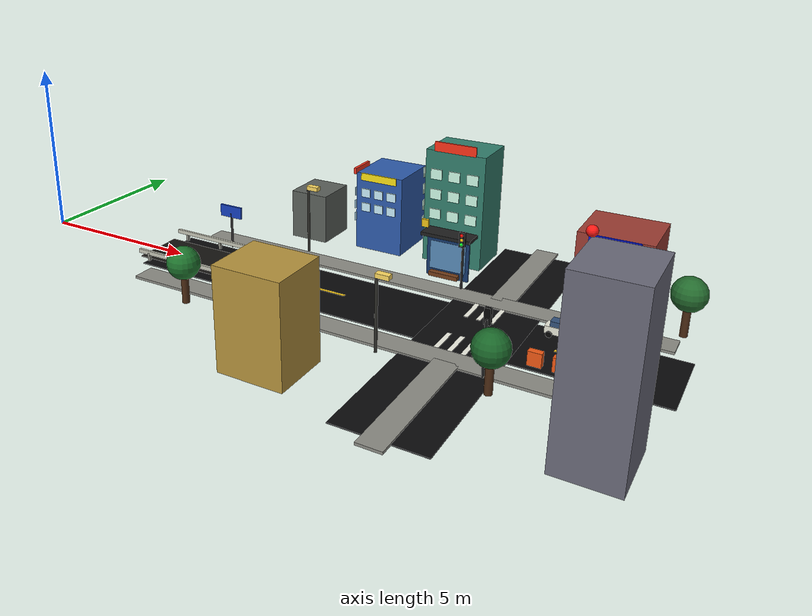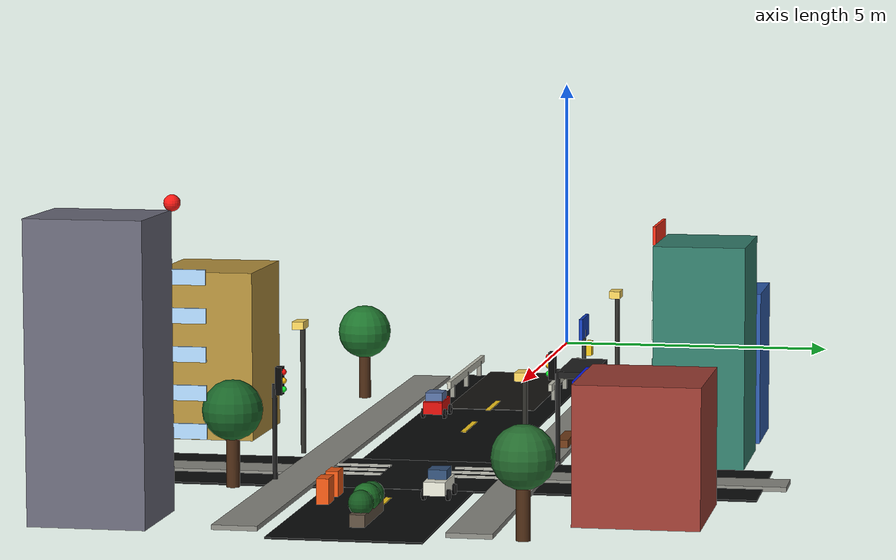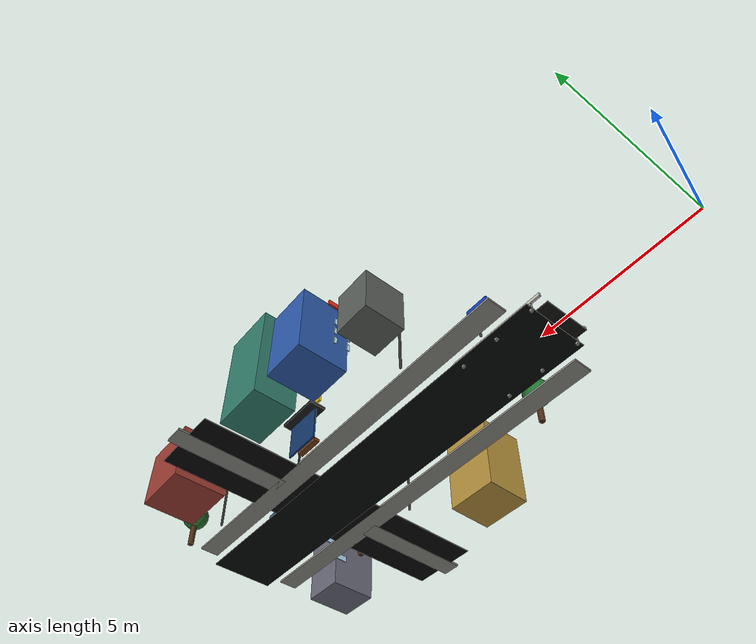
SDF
<?xml version="1.0" ?>
<sdf version="1.6">
  <model name="simple_city">
    <static>true</static>

    <!-- Main road linking the mountain exit to the city block. -->
    <link name="main_road">
      <pose>12.0 0 0.012 0 0 0</pose>
      <collision name="collision">
        <geometry><box><size>15.0 2.2 0.024</size></box></geometry>
      </collision>
      <visual name="visual">
        <geometry><box><size>15.0 2.2 0.024</size></box></geometry>
        <material><ambient>0.035 0.038 0.042 1</ambient><diffuse>0.035 0.038 0.042 1</diffuse></material>
      </visual>
    </link>

    <link name="cross_road">
      <pose>14.5 0 0.014 0 0 0</pose>
      <collision name="collision">
        <geometry><box><size>2.4 10.5 0.026</size></box></geometry>
      </collision>
      <visual name="visual">
        <geometry><box><size>2.4 10.5 0.026</size></box></geometry>
        <material><ambient>0.04 0.043 0.047 1</ambient><diffuse>0.04 0.043 0.047 1</diffuse></material>
      </visual>
    </link>

    <link name="connector_road">
      <pose>6.2 0 0.018 0 0 0</pose>
      <collision name="collision">
        <geometry><box><size>4.2 1.5 0.026</size></box></geometry>
      </collision>
      <visual name="visual">
        <geometry><box><size>4.2 1.5 0.026</size></box></geometry>
        <material><ambient>0.08 0.075 0.065 1</ambient><diffuse>0.08 0.075 0.065 1</diffuse></material>
      </visual>
    </link>

    <!-- Sidewalks. -->
    <link name="sidewalk_north">
      <pose>12.0 1.65 0.035 0 0 0</pose>
      <collision name="collision">
        <geometry><box><size>14.0 0.65 0.07</size></box></geometry>
      </collision>
      <visual name="visual">
        <geometry><box><size>14.0 0.65 0.07</size></box></geometry>
        <material><ambient>0.55 0.55 0.52 1</ambient><diffuse>0.55 0.55 0.52 1</diffuse></material>
      </visual>
    </link>

    <link name="sidewalk_south">
      <pose>12.0 -1.65 0.035 0 0 0</pose>
      <collision name="collision">
        <geometry><box><size>14.0 0.65 0.07</size></box></geometry>
      </collision>
      <visual name="visual">
        <geometry><box><size>14.0 0.65 0.07</size></box></geometry>
        <material><ambient>0.55 0.55 0.52 1</ambient><diffuse>0.55 0.55 0.52 1</diffuse></material>
      </visual>
    </link>

    <link name="sidewalk_west">
      <pose>14.5 -3.7 0.035 0 0 0</pose>
      <collision name="collision">
        <geometry><box><size>0.65 3.8 0.07</size></box></geometry>
      </collision>
      <visual name="visual">
        <geometry><box><size>0.65 3.8 0.07</size></box></geometry>
        <material><ambient>0.55 0.55 0.52 1</ambient><diffuse>0.55 0.55 0.52 1</diffuse></material>
      </visual>
    </link>

    <link name="sidewalk_east">
      <pose>14.5 3.7 0.035 0 0 0</pose>
      <collision name="collision">
        <geometry><box><size>0.65 3.8 0.07</size></box></geometry>
      </collision>
      <visual name="visual">
        <geometry><box><size>0.65 3.8 0.07</size></box></geometry>
        <material><ambient>0.55 0.55 0.52 1</ambient><diffuse>0.55 0.55 0.52 1</diffuse></material>
      </visual>
    </link>

    <!-- Lane markings. -->
    <link name="center_line_1">
      <pose>8.0 0 0.045 0 0 0</pose>
      <visual name="visual">
        <geometry><box><size>1.0 0.08 0.015</size></box></geometry>
        <material><ambient>1.0 0.82 0.12 1</ambient><diffuse>1.0 0.82 0.12 1</diffuse></material>
      </visual>
    </link>
    <link name="center_line_2">
      <pose>10.2 0 0.045 0 0 0</pose>
      <visual name="visual">
        <geometry><box><size>1.0 0.08 0.015</size></box></geometry>
        <material><ambient>1.0 0.82 0.12 1</ambient><diffuse>1.0 0.82 0.12 1</diffuse></material>
      </visual>
    </link>
    <link name="center_line_3">
      <pose>17.0 0 0.045 0 0 0</pose>
      <visual name="visual">
        <geometry><box><size>1.0 0.08 0.015</size></box></geometry>
        <material><ambient>1.0 0.82 0.12 1</ambient><diffuse>1.0 0.82 0.12 1</diffuse></material>
      </visual>
    </link>
    <link name="crosswalk_north_1">
      <pose>14.0 1.0 0.055 0 0 0</pose>
      <visual name="visual">
        <geometry><box><size>0.12 1.0 0.018</size></box></geometry>
        <material><ambient>0.95 0.95 0.90 1</ambient><diffuse>0.95 0.95 0.90 1</diffuse></material>
      </visual>
    </link>
    <link name="crosswalk_north_2">
      <pose>14.35 1.0 0.055 0 0 0</pose>
      <visual name="visual">
        <geometry><box><size>0.12 1.0 0.018</size></box></geometry>
        <material><ambient>0.95 0.95 0.90 1</ambient><diffuse>0.95 0.95 0.90 1</diffuse></material>
      </visual>
    </link>
    <link name="crosswalk_north_3">
      <pose>14.7 1.0 0.055 0 0 0</pose>
      <visual name="visual">
        <geometry><box><size>0.12 1.0 0.018</size></box></geometry>
        <material><ambient>0.95 0.95 0.90 1</ambient><diffuse>0.95 0.95 0.90 1</diffuse></material>
      </visual>
    </link>
    <link name="crosswalk_south_1">
      <pose>14.0 -1.0 0.055 0 0 0</pose>
      <visual name="visual">
        <geometry><box><size>0.12 1.0 0.018</size></box></geometry>
        <material><ambient>0.95 0.95 0.90 1</ambient><diffuse>0.95 0.95 0.90 1</diffuse></material>
      </visual>
    </link>
    <link name="crosswalk_south_2">
      <pose>14.35 -1.0 0.055 0 0 0</pose>
      <visual name="visual">
        <geometry><box><size>0.12 1.0 0.018</size></box></geometry>
        <material><ambient>0.95 0.95 0.90 1</ambient><diffuse>0.95 0.95 0.90 1</diffuse></material>
      </visual>
    </link>
    <link name="crosswalk_south_3">
      <pose>14.7 -1.0 0.055 0 0 0</pose>
      <visual name="visual">
        <geometry><box><size>0.12 1.0 0.018</size></box></geometry>
        <material><ambient>0.95 0.95 0.90 1</ambient><diffuse>0.95 0.95 0.90 1</diffuse></material>
      </visual>
    </link>

    <!-- Buildings with varied heights and colors. -->
    <link name="building_blue">
      <pose>10.0 4.0 1.2 0 0 0</pose>
      <collision name="collision"><geometry><box><size>1.5 1.6 2.4</size></box></geometry></collision>
      <visual name="visual">
        <geometry><box><size>1.5 1.6 2.4</size></box></geometry>
        <material><ambient>0.18 0.36 0.68 1</ambient><diffuse>0.18 0.36 0.68 1</diffuse></material>
      </visual>
    </link>
    <link name="building_green">
      <pose>12.3 4.1 1.7 0 0 0</pose>
      <collision name="collision"><geometry><box><size>1.8 1.4 3.4</size></box></geometry></collision>
      <visual name="visual">
        <geometry><box><size>1.8 1.4 3.4</size></box></geometry>
        <material><ambient>0.20 0.50 0.43 1</ambient><diffuse>0.20 0.50 0.43 1</diffuse></material>
      </visual>
    </link>
    <link name="building_red">
      <pose>17.0 3.8 1.0 0 0 0</pose>
      <collision name="collision"><geometry><box><size>2.0 1.8 2.0</size></box></geometry></collision>
      <visual name="visual">
        <geometry><box><size>2.0 1.8 2.0</size></box></geometry>
        <material><ambient>0.62 0.24 0.20 1</ambient><diffuse>0.62 0.24 0.20 1</diffuse></material>
      </visual>
    </link>
    <link name="building_tall">
      <pose>18.5 -3.7 2.15 0 0 0</pose>
      <collision name="collision"><geometry><box><size>1.5 1.7 4.3</size></box></geometry></collision>
      <visual name="visual">
        <geometry><box><size>1.5 1.7 4.3</size></box></geometry>
        <material><ambient>0.42 0.42 0.48 1</ambient><diffuse>0.42 0.42 0.48 1</diffuse></material>
      </visual>
    </link>
    <link name="building_yellow">
      <pose>11.0 -4.0 1.35 0 0 0</pose>
      <collision name="collision"><geometry><box><size>1.8 1.6 2.7</size></box></geometry></collision>
      <visual name="visual">
        <geometry><box><size>1.8 1.6 2.7</size></box></geometry>
        <material><ambient>0.72 0.58 0.24 1</ambient><diffuse>0.72 0.58 0.24 1</diffuse></material>
      </visual>
    </link>
    <link name="building_gray">
      <pose>7.7 3.6 0.75 0 0 0</pose>
      <collision name="collision"><geometry><box><size>1.2 1.3 1.5</size></box></geometry></collision>
      <visual name="visual">
        <geometry><box><size>1.2 1.3 1.5</size></box></geometry>
        <material><ambient>0.36 0.38 0.36 1</ambient><diffuse>0.36 0.38 0.36 1</diffuse></material>
      </visual>
    </link>

    <!-- Street lights. -->
    <link name="street_light_1">
      <pose>8.2 2.15 0 0 0 0</pose>
      <visual name="pole"><pose>0 0 1.0 0 0 0</pose><geometry><cylinder><radius>0.04</radius><length>2.0</length></cylinder></geometry><material><ambient>0.18 0.18 0.16 1</ambient><diffuse>0.18 0.18 0.16 1</diffuse></material></visual>
      <visual name="lamp"><pose>0.18 0 2.05 0 0 0</pose><geometry><box><size>0.36 0.18 0.12</size></box></geometry><material><ambient>1.0 0.86 0.38 1</ambient><diffuse>1.0 0.86 0.38 1</diffuse></material></visual>
    </link>
    <link name="street_light_2">
      <pose>12.8 -2.15 0 0 0 0</pose>
      <visual name="pole"><pose>0 0 1.0 0 0 0</pose><geometry><cylinder><radius>0.04</radius><length>2.0</length></cylinder></geometry><material><ambient>0.18 0.18 0.16 1</ambient><diffuse>0.18 0.18 0.16 1</diffuse></material></visual>
      <visual name="lamp"><pose>0.18 0 2.05 0 0 0</pose><geometry><box><size>0.36 0.18 0.12</size></box></geometry><material><ambient>1.0 0.86 0.38 1</ambient><diffuse>1.0 0.86 0.38 1</diffuse></material></visual>
    </link>
    <link name="street_light_3">
      <pose>17.4 2.15 0 0 0 0</pose>
      <visual name="pole"><pose>0 0 1.0 0 0 0</pose><geometry><cylinder><radius>0.04</radius><length>2.0</length></cylinder></geometry><material><ambient>0.18 0.18 0.16 1</ambient><diffuse>0.18 0.18 0.16 1</diffuse></material></visual>
      <visual name="lamp"><pose>0.18 0 2.05 0 0 0</pose><geometry><box><size>0.36 0.18 0.12</size></box></geometry><material><ambient>1.0 0.86 0.38 1</ambient><diffuse>1.0 0.86 0.38 1</diffuse></material></visual>
    </link>

    <!-- Trees. -->
    <link name="tree_1">
      <pose>7.2 -2.4 0 0 0 0</pose>
      <visual name="trunk"><pose>0 0 0.45 0 0 0</pose><geometry><cylinder><radius>0.10</radius><length>0.9</length></cylinder></geometry><material><ambient>0.30 0.17 0.08 1</ambient><diffuse>0.30 0.17 0.08 1</diffuse></material></visual>
      <visual name="crown"><pose>0 0 1.15 0 0 0</pose><geometry><sphere><radius>0.45</radius></sphere></geometry><material><ambient>0.12 0.46 0.18 1</ambient><diffuse>0.12 0.46 0.18 1</diffuse></material></visual>
    </link>
    <link name="tree_2">
      <pose>15.8 -2.5 0 0 0 0</pose>
      <visual name="trunk"><pose>0 0 0.45 0 0 0</pose><geometry><cylinder><radius>0.10</radius><length>0.9</length></cylinder></geometry><material><ambient>0.30 0.17 0.08 1</ambient><diffuse>0.30 0.17 0.08 1</diffuse></material></visual>
      <visual name="crown"><pose>0 0 1.15 0 0 0</pose><geometry><sphere><radius>0.45</radius></sphere></geometry><material><ambient>0.10 0.40 0.16 1</ambient><diffuse>0.10 0.40 0.16 1</diffuse></material></visual>
    </link>
    <link name="tree_3">
      <pose>19.0 2.4 0 0 0 0</pose>
      <visual name="trunk"><pose>0 0 0.45 0 0 0</pose><geometry><cylinder><radius>0.10</radius><length>0.9</length></cylinder></geometry><material><ambient>0.30 0.17 0.08 1</ambient><diffuse>0.30 0.17 0.08 1</diffuse></material></visual>
      <visual name="crown"><pose>0 0 1.15 0 0 0</pose><geometry><sphere><radius>0.45</radius></sphere></geometry><material><ambient>0.14 0.42 0.18 1</ambient><diffuse>0.14 0.42 0.18 1</diffuse></material></visual>
    </link>

    <!-- Road sign and small barriers. -->
    <link name="road_sign">
      <pose>6.0 1.25 0 0 0 0</pose>
      <visual name="pole"><pose>0 0 0.55 0 0 0</pose><geometry><cylinder><radius>0.035</radius><length>1.1</length></cylinder></geometry><material><ambient>0.2 0.2 0.2 1</ambient><diffuse>0.2 0.2 0.2 1</diffuse></material></visual>
      <visual name="plate"><pose>0 0 1.15 0 0 0</pose><geometry><box><size>0.75 0.06 0.36</size></box></geometry><material><ambient>0.08 0.25 0.75 1</ambient><diffuse>0.08 0.25 0.75 1</diffuse></material></visual>
    </link>
    <link name="barrier_1">
      <pose>16.3 -0.85 0.2 0 0 0</pose>
      <collision name="collision"><geometry><box><size>0.35 0.18 0.4</size></box></geometry></collision>
      <visual name="visual"><geometry><box><size>0.35 0.18 0.4</size></box></geometry><material><ambient>0.95 0.35 0.08 1</ambient><diffuse>0.95 0.35 0.08 1</diffuse></material></visual>
    </link>
    <link name="barrier_2">
      <pose>16.9 -0.85 0.2 0 0 0</pose>
      <collision name="collision"><geometry><box><size>0.35 0.18 0.4</size></box></geometry></collision>
      <visual name="visual"><geometry><box><size>0.35 0.18 0.4</size></box></geometry><material><ambient>0.95 0.35 0.08 1</ambient><diffuse>0.95 0.35 0.08 1</diffuse></material></visual>
    </link>

    <!-- Extra facade details make the block read as a city instead of plain boxes. -->
    <link name="building_windows_blue">
      <pose>9.24 3.18 1.35 0 0 0</pose>
      <visual name="w1"><pose>0 0 0.45 0 0 0</pose><geometry><box><size>0.03 0.10 0.25</size></box></geometry><material><ambient>0.75 0.92 1.0 1</ambient><diffuse>0.75 0.92 1.0 1</diffuse></material></visual>
      <visual name="w2"><pose>0 0 0.05 0 0 0</pose><geometry><box><size>0.03 0.10 0.25</size></box></geometry><material><ambient>0.75 0.92 1.0 1</ambient><diffuse>0.75 0.92 1.0 1</diffuse></material></visual>
      <visual name="w3"><pose>0 0 -0.35 0 0 0</pose><geometry><box><size>0.03 0.10 0.25</size></box></geometry><material><ambient>0.75 0.92 1.0 1</ambient><diffuse>0.75 0.92 1.0 1</diffuse></material></visual>
      <visual name="w4"><pose>0 0.45 0.45 0 0 0</pose><geometry><box><size>0.03 0.10 0.25</size></box></geometry><material><ambient>0.75 0.92 1.0 1</ambient><diffuse>0.75 0.92 1.0 1</diffuse></material></visual>
      <visual name="w5"><pose>0 0.45 0.05 0 0 0</pose><geometry><box><size>0.03 0.10 0.25</size></box></geometry><material><ambient>0.75 0.92 1.0 1</ambient><diffuse>0.75 0.92 1.0 1</diffuse></material></visual>
      <visual name="w6"><pose>0 0.45 -0.35 0 0 0</pose><geometry><box><size>0.03 0.10 0.25</size></box></geometry><material><ambient>0.75 0.92 1.0 1</ambient><diffuse>0.75 0.92 1.0 1</diffuse></material></visual>
      <visual name="roof_sign"><pose>0 0.35 1.10 0 0 0</pose><geometry><box><size>0.08 0.82 0.18</size></box></geometry><material><ambient>0.95 0.20 0.12 1</ambient><diffuse>0.95 0.20 0.12 1</diffuse></material></visual>
    </link>

    <link name="building_windows_green">
      <pose>11.38 3.39 1.75 0 0 0</pose>
      <visual name="w1"><pose>0 0 0.95 0 0 0</pose><geometry><box><size>0.03 0.12 0.30</size></box></geometry><material><ambient>0.85 1.0 0.92 1</ambient><diffuse>0.85 1.0 0.92 1</diffuse></material></visual>
      <visual name="w2"><pose>0 0 0.45 0 0 0</pose><geometry><box><size>0.03 0.12 0.30</size></box></geometry><material><ambient>0.85 1.0 0.92 1</ambient><diffuse>0.85 1.0 0.92 1</diffuse></material></visual>
      <visual name="w3"><pose>0 0 -0.05 0 0 0</pose><geometry><box><size>0.03 0.12 0.30</size></box></geometry><material><ambient>0.85 1.0 0.92 1</ambient><diffuse>0.85 1.0 0.92 1</diffuse></material></visual>
      <visual name="w4"><pose>0 0 -0.55 0 0 0</pose><geometry><box><size>0.03 0.12 0.30</size></box></geometry><material><ambient>0.85 1.0 0.92 1</ambient><diffuse>0.85 1.0 0.92 1</diffuse></material></visual>
      <visual name="w5"><pose>0 0.52 0.95 0 0 0</pose><geometry><box><size>0.03 0.12 0.30</size></box></geometry><material><ambient>0.85 1.0 0.92 1</ambient><diffuse>0.85 1.0 0.92 1</diffuse></material></visual>
      <visual name="w6"><pose>0 0.52 0.45 0 0 0</pose><geometry><box><size>0.03 0.12 0.30</size></box></geometry><material><ambient>0.85 1.0 0.92 1</ambient><diffuse>0.85 1.0 0.92 1</diffuse></material></visual>
      <visual name="w7"><pose>0 0.52 -0.05 0 0 0</pose><geometry><box><size>0.03 0.12 0.30</size></box></geometry><material><ambient>0.85 1.0 0.92 1</ambient><diffuse>0.85 1.0 0.92 1</diffuse></material></visual>
      <visual name="w8"><pose>0 0.52 -0.55 0 0 0</pose><geometry><box><size>0.03 0.12 0.30</size></box></geometry><material><ambient>0.85 1.0 0.92 1</ambient><diffuse>0.85 1.0 0.92 1</diffuse></material></visual>
    </link>

    <link name="building_windows_tall">
      <pose>17.74 -2.84 2.25 0 0 0</pose>
      <visual name="strip_1"><pose>0 0 1.10 0 0 0</pose><geometry><box><size>0.035 0.95 0.22</size></box></geometry><material><ambient>0.70 0.86 1.0 1</ambient><diffuse>0.70 0.86 1.0 1</diffuse></material></visual>
      <visual name="strip_2"><pose>0 0 0.55 0 0 0</pose><geometry><box><size>0.035 0.95 0.22</size></box></geometry><material><ambient>0.70 0.86 1.0 1</ambient><diffuse>0.70 0.86 1.0 1</diffuse></material></visual>
      <visual name="strip_3"><pose>0 0 0.00 0 0 0</pose><geometry><box><size>0.035 0.95 0.22</size></box></geometry><material><ambient>0.70 0.86 1.0 1</ambient><diffuse>0.70 0.86 1.0 1</diffuse></material></visual>
      <visual name="strip_4"><pose>0 0 -0.55 0 0 0</pose><geometry><box><size>0.035 0.95 0.22</size></box></geometry><material><ambient>0.70 0.86 1.0 1</ambient><diffuse>0.70 0.86 1.0 1</diffuse></material></visual>
      <visual name="strip_5"><pose>0 0 -1.10 0 0 0</pose><geometry><box><size>0.035 0.95 0.22</size></box></geometry><material><ambient>0.70 0.86 1.0 1</ambient><diffuse>0.70 0.86 1.0 1</diffuse></material></visual>
      <visual name="top_light"><pose>0 0 2.15 0 0 0</pose><geometry><sphere><radius>0.12</radius></sphere></geometry><material><ambient>1.0 0.10 0.08 1</ambient><diffuse>1.0 0.10 0.08 1</diffuse></material></visual>
    </link>

    <!-- Traffic lights at the intersection. -->
    <link name="traffic_light_north">
      <pose>13.25 1.95 0 0 0 0</pose>
      <visual name="pole"><pose>0 0 0.75 0 0 0</pose><geometry><cylinder><radius>0.035</radius><length>1.5</length></cylinder></geometry><material><ambient>0.12 0.12 0.12 1</ambient><diffuse>0.12 0.12 0.12 1</diffuse></material></visual>
      <visual name="case"><pose>0 -0.08 1.55 0 0 0</pose><geometry><box><size>0.16 0.10 0.42</size></box></geometry><material><ambient>0.02 0.02 0.02 1</ambient><diffuse>0.02 0.02 0.02 1</diffuse></material></visual>
      <visual name="red"><pose>0 -0.14 1.68 0 0 0</pose><geometry><sphere><radius>0.045</radius></sphere></geometry><material><ambient>1.0 0.05 0.03 1</ambient><diffuse>1.0 0.05 0.03 1</diffuse></material></visual>
      <visual name="yellow"><pose>0 -0.14 1.55 0 0 0</pose><geometry><sphere><radius>0.045</radius></sphere></geometry><material><ambient>1.0 0.75 0.05 1</ambient><diffuse>1.0 0.75 0.05 1</diffuse></material></visual>
      <visual name="green"><pose>0 -0.14 1.42 0 0 0</pose><geometry><sphere><radius>0.045</radius></sphere></geometry><material><ambient>0.05 0.95 0.18 1</ambient><diffuse>0.05 0.95 0.18 1</diffuse></material></visual>
    </link>

    <link name="traffic_light_south">
      <pose>15.45 -1.95 0 0 0 3.1416</pose>
      <visual name="pole"><pose>0 0 0.75 0 0 0</pose><geometry><cylinder><radius>0.035</radius><length>1.5</length></cylinder></geometry><material><ambient>0.12 0.12 0.12 1</ambient><diffuse>0.12 0.12 0.12 1</diffuse></material></visual>
      <visual name="case"><pose>0 -0.08 1.55 0 0 0</pose><geometry><box><size>0.16 0.10 0.42</size></box></geometry><material><ambient>0.02 0.02 0.02 1</ambient><diffuse>0.02 0.02 0.02 1</diffuse></material></visual>
      <visual name="red"><pose>0 -0.14 1.68 0 0 0</pose><geometry><sphere><radius>0.045</radius></sphere></geometry><material><ambient>1.0 0.05 0.03 1</ambient><diffuse>1.0 0.05 0.03 1</diffuse></material></visual>
      <visual name="yellow"><pose>0 -0.14 1.55 0 0 0</pose><geometry><sphere><radius>0.045</radius></sphere></geometry><material><ambient>1.0 0.75 0.05 1</ambient><diffuse>1.0 0.75 0.05 1</diffuse></material></visual>
      <visual name="green"><pose>0 -0.14 1.42 0 0 0</pose><geometry><sphere><radius>0.045</radius></sphere></geometry><material><ambient>0.05 0.95 0.18 1</ambient><diffuse>0.05 0.95 0.18 1</diffuse></material></visual>
    </link>

    <!-- Parked cars and a bus stop create a clearer street-scene feel. -->
    <link name="parked_car_red">
      <pose>9.3 -0.72 0.16 0 0 0</pose>
      <visual name="body"><pose>0 0 0.08 0 0 0</pose><geometry><box><size>0.72 0.32 0.20</size></box></geometry><material><ambient>0.88 0.06 0.04 1</ambient><diffuse>0.88 0.06 0.04 1</diffuse></material></visual>
      <visual name="roof"><pose>0.05 0 0.24 0 0 0</pose><geometry><box><size>0.36 0.28 0.16</size></box></geometry><material><ambient>0.35 0.45 0.65 1</ambient><diffuse>0.35 0.45 0.65 1</diffuse></material></visual>
      <visual name="wheel_fl"><pose>0.23 0.18 -0.02 1.5708 0 0</pose><geometry><cylinder><radius>0.08</radius><length>0.05</length></cylinder></geometry><material><ambient>0.02 0.02 0.02 1</ambient><diffuse>0.02 0.02 0.02 1</diffuse></material></visual>
      <visual name="wheel_fr"><pose>0.23 -0.18 -0.02 1.5708 0 0</pose><geometry><cylinder><radius>0.08</radius><length>0.05</length></cylinder></geometry><material><ambient>0.02 0.02 0.02 1</ambient><diffuse>0.02 0.02 0.02 1</diffuse></material></visual>
      <visual name="wheel_rl"><pose>-0.23 0.18 -0.02 1.5708 0 0</pose><geometry><cylinder><radius>0.08</radius><length>0.05</length></cylinder></geometry><material><ambient>0.02 0.02 0.02 1</ambient><diffuse>0.02 0.02 0.02 1</diffuse></material></visual>
      <visual name="wheel_rr"><pose>-0.23 -0.18 -0.02 1.5708 0 0</pose><geometry><cylinder><radius>0.08</radius><length>0.05</length></cylinder></geometry><material><ambient>0.02 0.02 0.02 1</ambient><diffuse>0.02 0.02 0.02 1</diffuse></material></visual>
    </link>

    <link name="parked_car_white">
      <pose>16.4 0.72 0.16 0 0 3.1416</pose>
      <visual name="body"><pose>0 0 0.08 0 0 0</pose><geometry><box><size>0.72 0.32 0.20</size></box></geometry><material><ambient>0.92 0.92 0.86 1</ambient><diffuse>0.92 0.92 0.86 1</diffuse></material></visual>
      <visual name="roof"><pose>0.05 0 0.24 0 0 0</pose><geometry><box><size>0.36 0.28 0.16</size></box></geometry><material><ambient>0.20 0.32 0.48 1</ambient><diffuse>0.20 0.32 0.48 1</diffuse></material></visual>
      <visual name="wheel_fl"><pose>0.23 0.18 -0.02 1.5708 0 0</pose><geometry><cylinder><radius>0.08</radius><length>0.05</length></cylinder></geometry><material><ambient>0.02 0.02 0.02 1</ambient><diffuse>0.02 0.02 0.02 1</diffuse></material></visual>
      <visual name="wheel_fr"><pose>0.23 -0.18 -0.02 1.5708 0 0</pose><geometry><cylinder><radius>0.08</radius><length>0.05</length></cylinder></geometry><material><ambient>0.02 0.02 0.02 1</ambient><diffuse>0.02 0.02 0.02 1</diffuse></material></visual>
      <visual name="wheel_rl"><pose>-0.23 0.18 -0.02 1.5708 0 0</pose><geometry><cylinder><radius>0.08</radius><length>0.05</length></cylinder></geometry><material><ambient>0.02 0.02 0.02 1</ambient><diffuse>0.02 0.02 0.02 1</diffuse></material></visual>
      <visual name="wheel_rr"><pose>-0.23 -0.18 -0.02 1.5708 0 0</pose><geometry><cylinder><radius>0.08</radius><length>0.05</length></cylinder></geometry><material><ambient>0.02 0.02 0.02 1</ambient><diffuse>0.02 0.02 0.02 1</diffuse></material></visual>
    </link>

    <link name="bus_stop">
      <pose>12.7 2.25 0 0 0 0</pose>
      <visual name="back"><pose>0 0 0.75 0 0 0</pose><geometry><box><size>1.25 0.06 1.20</size></box></geometry><material><ambient>0.08 0.22 0.42 1</ambient><diffuse>0.08 0.22 0.42 1</diffuse></material></visual>
      <visual name="glass"><pose>0 -0.035 0.78 0 0 0</pose><geometry><box><size>1.05 0.025 0.82</size></box></geometry><material><ambient>0.55 0.78 0.95 0.65</ambient><diffuse>0.55 0.78 0.95 0.65</diffuse></material></visual>
      <visual name="roof"><pose>0 0 1.43 0 0 0</pose><geometry><box><size>1.45 0.55 0.10</size></box></geometry><material><ambient>0.12 0.12 0.12 1</ambient><diffuse>0.12 0.12 0.12 1</diffuse></material></visual>
      <visual name="bench"><pose>0 -0.25 0.32 0 0 0</pose><geometry><box><size>0.85 0.18 0.12</size></box></geometry><material><ambient>0.45 0.24 0.10 1</ambient><diffuse>0.45 0.24 0.10 1</diffuse></material></visual>
      <visual name="sign"><pose>-0.72 0 1.65 0 0 0</pose><geometry><box><size>0.20 0.08 0.22</size></box></geometry><material><ambient>0.95 0.78 0.10 1</ambient><diffuse>0.95 0.78 0.10 1</diffuse></material></visual>
    </link>

    <link name="median_planter">
      <pose>18.0 0.0 0.10 0 0 0</pose>
      <visual name="base"><geometry><box><size>1.25 0.22 0.20</size></box></geometry><material><ambient>0.38 0.32 0.26 1</ambient><diffuse>0.38 0.32 0.26 1</diffuse></material></visual>
      <visual name="bush_1"><pose>-0.35 0 0.22 0 0 0</pose><geometry><sphere><radius>0.18</radius></sphere></geometry><material><ambient>0.08 0.35 0.12 1</ambient><diffuse>0.08 0.35 0.12 1</diffuse></material></visual>
      <visual name="bush_2"><pose>0.00 0 0.24 0 0 0</pose><geometry><sphere><radius>0.20</radius></sphere></geometry><material><ambient>0.10 0.42 0.14 1</ambient><diffuse>0.10 0.42 0.14 1</diffuse></material></visual>
      <visual name="bush_3"><pose>0.36 0 0.22 0 0 0</pose><geometry><sphere><radius>0.18</radius></sphere></geometry><material><ambient>0.08 0.35 0.12 1</ambient><diffuse>0.08 0.35 0.12 1</diffuse></material></visual>
    </link>

    <!-- Guard rails guide the eye from the mountain road into the city. -->
    <link name="connector_guard_rail_north">
      <pose>5.8 0.88 0.28 0 0 0</pose>
      <visual name="rail"><geometry><box><size>3.2 0.07 0.12</size></box></geometry><material><ambient>0.78 0.78 0.72 1</ambient><diffuse>0.78 0.78 0.72 1</diffuse></material></visual>
      <visual name="post_1"><pose>-1.25 0 -0.18 0 0 0</pose><geometry><box><size>0.07 0.07 0.36</size></box></geometry><material><ambient>0.60 0.60 0.56 1</ambient><diffuse>0.60 0.60 0.56 1</diffuse></material></visual>
      <visual name="post_2"><pose>0 0 -0.18 0 0 0</pose><geometry><box><size>0.07 0.07 0.36</size></box></geometry><material><ambient>0.60 0.60 0.56 1</ambient><diffuse>0.60 0.60 0.56 1</diffuse></material></visual>
      <visual name="post_3"><pose>1.25 0 -0.18 0 0 0</pose><geometry><box><size>0.07 0.07 0.36</size></box></geometry><material><ambient>0.60 0.60 0.56 1</ambient><diffuse>0.60 0.60 0.56 1</diffuse></material></visual>
    </link>

    <link name="connector_guard_rail_south">
      <pose>5.8 -0.88 0.28 0 0 0</pose>
      <visual name="rail"><geometry><box><size>3.2 0.07 0.12</size></box></geometry><material><ambient>0.78 0.78 0.72 1</ambient><diffuse>0.78 0.78 0.72 1</diffuse></material></visual>
      <visual name="post_1"><pose>-1.25 0 -0.18 0 0 0</pose><geometry><box><size>0.07 0.07 0.36</size></box></geometry><material><ambient>0.60 0.60 0.56 1</ambient><diffuse>0.60 0.60 0.56 1</diffuse></material></visual>
      <visual name="post_2"><pose>0 0 -0.18 0 0 0</pose><geometry><box><size>0.07 0.07 0.36</size></box></geometry><material><ambient>0.60 0.60 0.56 1</ambient><diffuse>0.60 0.60 0.56 1</diffuse></material></visual>
      <visual name="post_3"><pose>1.25 0 -0.18 0 0 0</pose><geometry><box><size>0.07 0.07 0.36</size></box></geometry><material><ambient>0.60 0.60 0.56 1</ambient><diffuse>0.60 0.60 0.56 1</diffuse></material></visual>
    </link>

    <!-- Large front-facing panels are tuned for the default Gazebo camera. -->
    <link name="visible_facade_blue">
      <pose>10.0 3.18 1.25 0 0 0</pose>
      <visual name="row_1"><pose>-0.42 0 0.55 0 0 0</pose><geometry><box><size>0.28 0.035 0.26</size></box></geometry><material><ambient>0.80 0.95 1.0 1</ambient><diffuse>0.80 0.95 1.0 1</diffuse></material></visual>
      <visual name="row_2"><pose>0.00 0 0.55 0 0 0</pose><geometry><box><size>0.28 0.035 0.26</size></box></geometry><material><ambient>0.80 0.95 1.0 1</ambient><diffuse>0.80 0.95 1.0 1</diffuse></material></visual>
      <visual name="row_3"><pose>0.42 0 0.55 0 0 0</pose><geometry><box><size>0.28 0.035 0.26</size></box></geometry><material><ambient>0.80 0.95 1.0 1</ambient><diffuse>0.80 0.95 1.0 1</diffuse></material></visual>
      <visual name="row_4"><pose>-0.42 0 0.10 0 0 0</pose><geometry><box><size>0.28 0.035 0.26</size></box></geometry><material><ambient>0.80 0.95 1.0 1</ambient><diffuse>0.80 0.95 1.0 1</diffuse></material></visual>
      <visual name="row_5"><pose>0.00 0 0.10 0 0 0</pose><geometry><box><size>0.28 0.035 0.26</size></box></geometry><material><ambient>0.80 0.95 1.0 1</ambient><diffuse>0.80 0.95 1.0 1</diffuse></material></visual>
      <visual name="row_6"><pose>0.42 0 0.10 0 0 0</pose><geometry><box><size>0.28 0.035 0.26</size></box></geometry><material><ambient>0.80 0.95 1.0 1</ambient><diffuse>0.80 0.95 1.0 1</diffuse></material></visual>
      <visual name="shop_sign"><pose>0 0 1.05 0 0 0</pose><geometry><box><size>1.15 0.04 0.22</size></box></geometry><material><ambient>1.0 0.90 0.08 1</ambient><diffuse>1.0 0.90 0.08 1</diffuse></material></visual>
    </link>

    <link name="visible_facade_green">
      <pose>12.3 3.38 1.75 0 0 0</pose>
      <visual name="glass_1"><pose>-0.55 0 0.95 0 0 0</pose><geometry><box><size>0.34 0.035 0.30</size></box></geometry><material><ambient>0.82 1.0 0.92 1</ambient><diffuse>0.82 1.0 0.92 1</diffuse></material></visual>
      <visual name="glass_2"><pose>0.00 0 0.95 0 0 0</pose><geometry><box><size>0.34 0.035 0.30</size></box></geometry><material><ambient>0.82 1.0 0.92 1</ambient><diffuse>0.82 1.0 0.92 1</diffuse></material></visual>
      <visual name="glass_3"><pose>0.55 0 0.95 0 0 0</pose><geometry><box><size>0.34 0.035 0.30</size></box></geometry><material><ambient>0.82 1.0 0.92 1</ambient><diffuse>0.82 1.0 0.92 1</diffuse></material></visual>
      <visual name="glass_4"><pose>-0.55 0 0.35 0 0 0</pose><geometry><box><size>0.34 0.035 0.30</size></box></geometry><material><ambient>0.82 1.0 0.92 1</ambient><diffuse>0.82 1.0 0.92 1</diffuse></material></visual>
      <visual name="glass_5"><pose>0.00 0 0.35 0 0 0</pose><geometry><box><size>0.34 0.035 0.30</size></box></geometry><material><ambient>0.82 1.0 0.92 1</ambient><diffuse>0.82 1.0 0.92 1</diffuse></material></visual>
      <visual name="glass_6"><pose>0.55 0 0.35 0 0 0</pose><geometry><box><size>0.34 0.035 0.30</size></box></geometry><material><ambient>0.82 1.0 0.92 1</ambient><diffuse>0.82 1.0 0.92 1</diffuse></material></visual>
      <visual name="glass_7"><pose>-0.55 0 -0.25 0 0 0</pose><geometry><box><size>0.34 0.035 0.30</size></box></geometry><material><ambient>0.82 1.0 0.92 1</ambient><diffuse>0.82 1.0 0.92 1</diffuse></material></visual>
      <visual name="glass_8"><pose>0.00 0 -0.25 0 0 0</pose><geometry><box><size>0.34 0.035 0.30</size></box></geometry><material><ambient>0.82 1.0 0.92 1</ambient><diffuse>0.82 1.0 0.92 1</diffuse></material></visual>
      <visual name="glass_9"><pose>0.55 0 -0.25 0 0 0</pose><geometry><box><size>0.34 0.035 0.30</size></box></geometry><material><ambient>0.82 1.0 0.92 1</ambient><diffuse>0.82 1.0 0.92 1</diffuse></material></visual>
      <visual name="roof_logo"><pose>0 0 1.78 0 0 0</pose><geometry><box><size>1.25 0.045 0.28</size></box></geometry><material><ambient>1.0 0.20 0.10 1</ambient><diffuse>1.0 0.20 0.10 1</diffuse></material></visual>
    </link>

    <link name="visible_facade_red">
      <pose>17.0 2.88 1.05 0 0 0</pose>
      <visual name="window_a"><pose>-0.45 0 0.30 0 0 0</pose><geometry><box><size>0.35 0.035 0.28</size></box></geometry><material><ambient>0.95 0.95 0.75 1</ambient><diffuse>0.95 0.95 0.75 1</diffuse></material></visual>
      <visual name="window_b"><pose>0.45 0 0.30 0 0 0</pose><geometry><box><size>0.35 0.035 0.28</size></box></geometry><material><ambient>0.95 0.95 0.75 1</ambient><diffuse>0.95 0.95 0.75 1</diffuse></material></visual>
      <visual name="door"><pose>0 0 -0.45 0 0 0</pose><geometry><box><size>0.38 0.04 0.70</size></box></geometry><material><ambient>0.10 0.08 0.06 1</ambient><diffuse>0.10 0.08 0.06 1</diffuse></material></visual>
      <visual name="store_sign"><pose>0 0 0.84 0 0 0</pose><geometry><box><size>1.35 0.045 0.22</size></box></geometry><material><ambient>0.05 0.12 0.95 1</ambient><diffuse>0.05 0.12 0.95 1</diffuse></material></visual>
    </link>
  </model>
</sdf>
